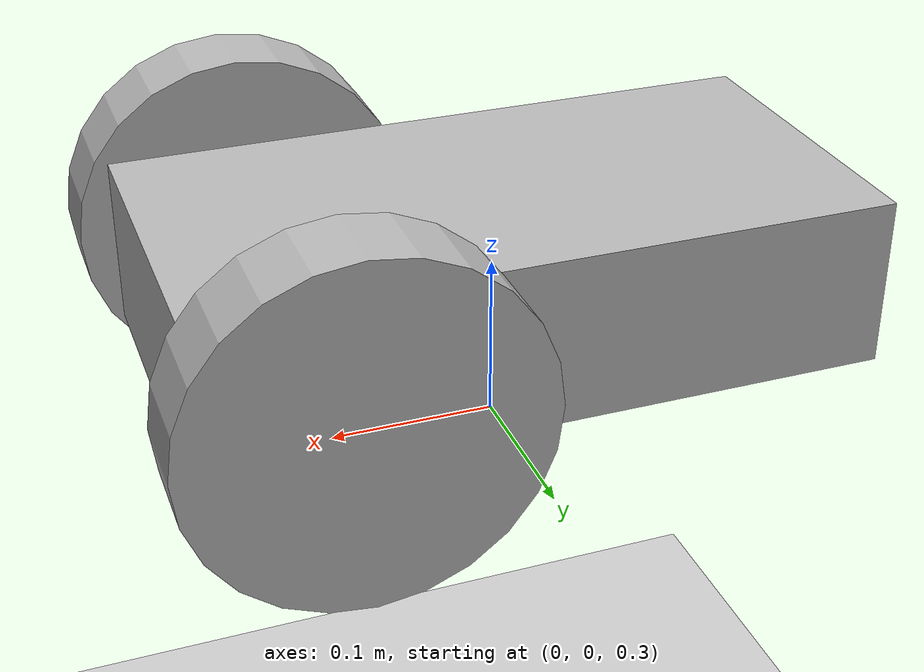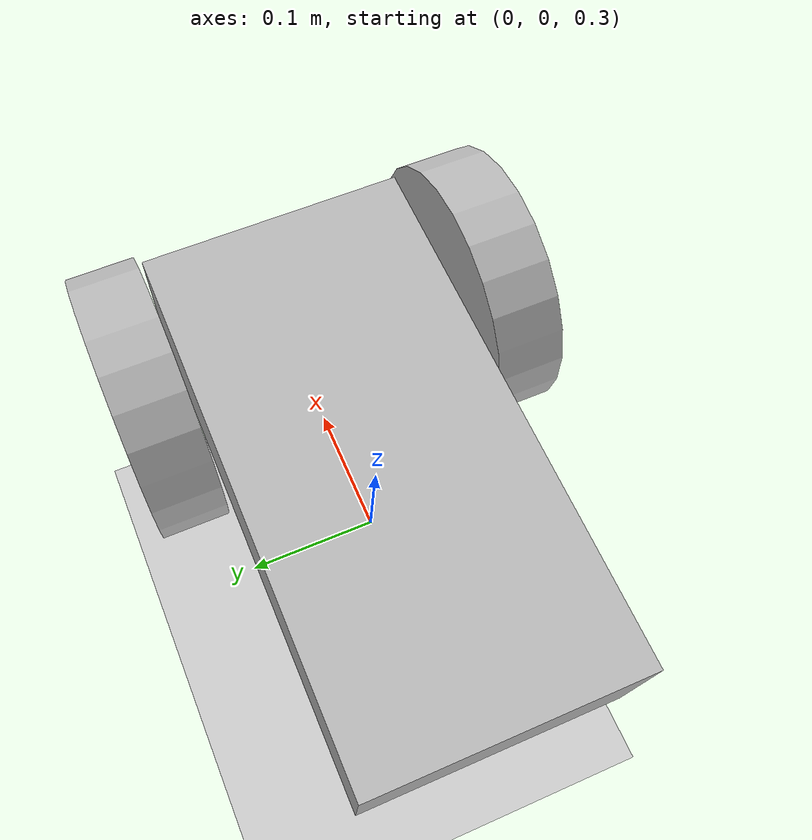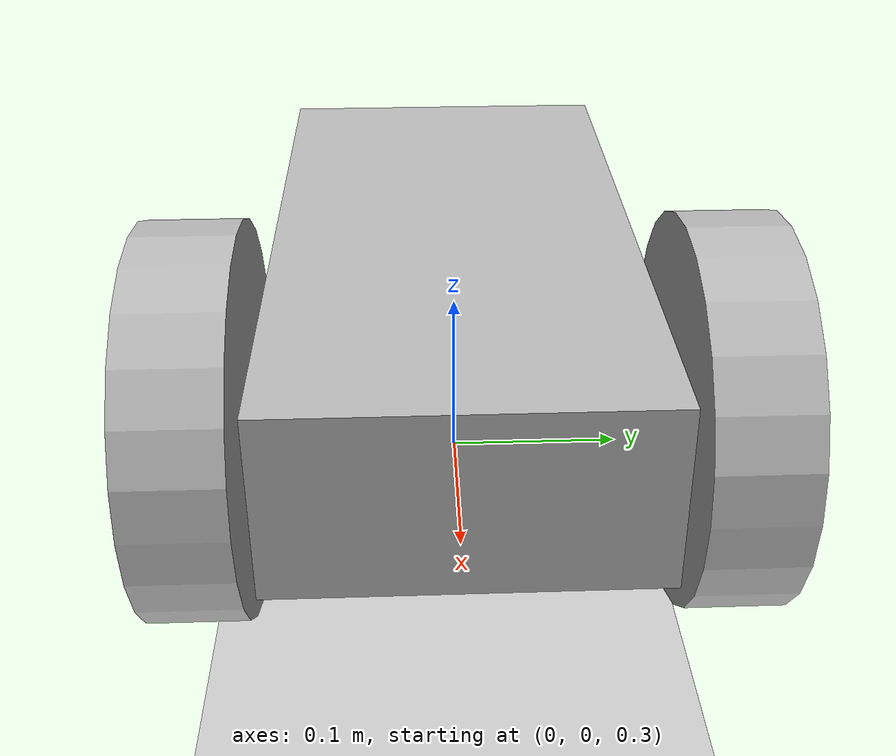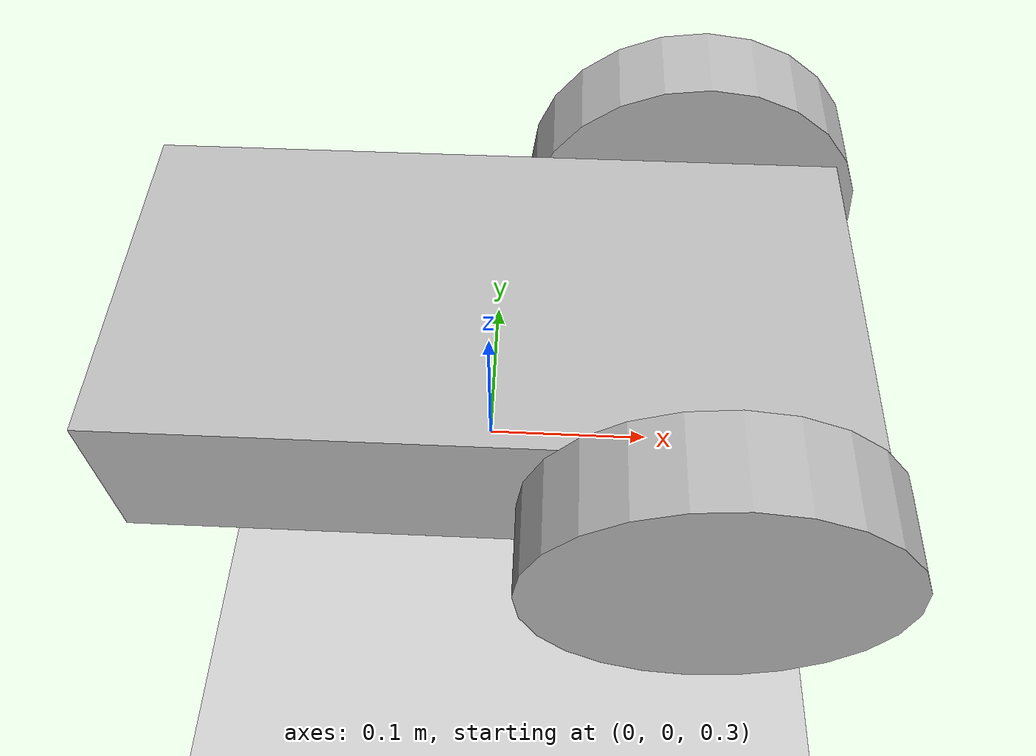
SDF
<sdf version="1.6">
  <world name="simple_world">
    <include>
      <uri>model://my_robot</uri>
      <pose>0 0 0.2 0 0 0</pose>
    </include>

    <!-- A global light source -->
    <include>
      <uri>model://sun</uri>
    </include>

    <!-- A ground plane -->
    <include>
      <uri>model://ground_plane</uri>
    </include>
  </world>
</sdf>

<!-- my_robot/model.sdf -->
<sdf version='1.4'>
  <model name="my_robot">

  	<plugin name="differential_drive_controller" filename="libgazebo_ros_diff_drive.so">

	    <!-- Plugin update rate in Hz -->
	    <updateRate>${update_rate}</updateRate>

	    <!-- Name of left joint, defaults to `left_joint` -->
	    <leftJoint>left_wheel_joint</leftJoint>

	    <!-- Name of right joint, defaults to `right_joint` -->
	    <rightJoint>right_wheel_joint</rightJoint>

	    <!-- The distance from the center of one wheel to the other, in meters, defaults to 0.34 m -->
	    <wheelSeparation>0.5380</wheelSeparation>

	    <!-- Diameter of the wheels, in meters, defaults to 0.15 m -->
	    <wheelDiameter>0.2410</wheelDiameter>

	    <!-- Wheel acceleration, in rad/s^2, defaults to 0.0 rad/s^2 -->
	    <wheelAcceleration>1.0</wheelAcceleration>

	    <!-- Maximum torque which the wheels can produce, in Nm, defaults to 5 Nm -->
	    <wheelTorque>20</wheelTorque>

	    <!-- Topic to receive geometry_msgs/Twist message commands, defaults to `cmd_vel` -->
	    <commandTopic>cmd_vel</commandTopic>

	    <!-- Topic to publish nav_msgs/Odometry messages, defaults to `odom` -->
	    <odometryTopic>odom</odometryTopic>

	    <!-- Odometry frame, defaults to `odom` -->
	    <odometryFrame>odom</odometryFrame>

	    <!-- Robot frame to calculate odometry from, defaults to `base_footprint` -->
	    <robotBaseFrame>base_footprint</robotBaseFrame>

	    <!-- Odometry source, 0 for ENCODER, 1 for WORLD, defaults to WORLD -->
	    <odometrySource>1</odometrySource>

	    <!-- Set to true to publish transforms for the wheel links, defaults to false -->
	    <publishWheelTF>true</publishWheelTF>

	    <!-- Set to true to publish transforms for the odometry, defaults to true -->
	    <publishOdom>true</publishOdom>

	    <!-- Set to true to publish sensor_msgs/JointState on /joint_states for the wheel joints, defaults to false -->
	    <publishWheelJointState>true</publishWheelJointState>

	    <!-- Set to true to swap right and left wheels, defaults to true -->
	    <legacyMode>false</legacyMode>
	  </plugin>

  	<static>false</static>
  	 <link name='chassis'>
            <pose>0 0 .2 0 0 0</pose>
            <inertial>
          	<mass>20.0</mass>
	    </inertial>

            <collision name='collision'>
              <geometry>
                <box>
                  <size>.4 .2 .1</size>
                </box>
              </geometry>
              <surface>
		    <contact>
		      <ode>
			<max_vel>0</max_vel>
		      </ode>
		    </contact>
		</surface>
            </collision>

            <visual name='visual'>
              <geometry>
                <box>
                  <size>.4 .2 .1</size>
                </box>
              </geometry>
            </visual>

            <collision name='caster_collision'>
            <pose>-0.15 0 -0.05 0 0 0</pose>
            <geometry>
                <sphere>
                <radius>.05</radius>
              </sphere>
            </geometry>

            <surface>
              <friction>
                <ode>
                  <mu>0</mu>
                  <mu2>0</mu2>
                  <slip1>1.0</slip1>
                  <slip2>1.0</slip2>
                </ode>
              </friction>
            </surface>
            <surface>
		    <contact>
		      <ode>
			<max_vel>0</max_vel>
		      </ode>
		    </contact>
		</surface>
          </collision>

          <visual name='caster_visual'>
            <pose>-0.15 0 -0.05 0 0 0</pose>
            <geometry>
              <sphere>
                <radius>.05</radius>
              </sphere>
            </geometry>
          </visual>

       </link>

	<link name="left_wheel">
	<pose>0.12 0.13 0.2 0 1.5707 1.5707</pose>
	<inertial>
		<mass>1.0</mass>
		<inertia>
		<ixx>0.043333</ixx>
		<iyy>0.043333</iyy>
		<izz>0.005333</izz>
		</inertia>
	</inertial>
	<collision name="collision">
	  <geometry>
	    <cylinder>
	      <radius>.1</radius>
	      <length>.05</length>
	    </cylinder>
	  </geometry>
	  <surface>
		    <contact>
		      <ode>
			<max_vel>0</max_vel>
		      </ode>
		    </contact>
		</surface>
	</collision>
	<visual name="visual">
	  <geometry>
	    <cylinder>
	      <radius>.1</radius>
	      <length>.05</length>
	    </cylinder>
	  </geometry>
	</visual>

	</link>

	<link name="right_wheel">
        <pose>0.12 -0.13 0.2 0 1.5707 1.5707</pose>
        <inertial>
		<mass>1.0</mass>
		<inertia>
		<ixx>0.043333</ixx>
		<iyy>0.043333</iyy>
		<izz>0.005333</izz>
		</inertia>
	</inertial>
        <collision name="collision">
          <geometry>
            <cylinder>
              <radius>.1</radius>
              <length>.05</length>
            </cylinder>
          </geometry>
          <surface>
		    <contact>
		      <ode>
			<max_vel>0</max_vel>
		      </ode>
		    </contact>
		</surface>
        </collision>
        <visual name="visual">
          <geometry>
            <cylinder>
              <radius>.1</radius>
              <length>.05</length>
            </cylinder>
          </geometry>
        </visual>
      </link>

      <joint type="revolute" name="left_wheel_joint">
        <pose>0 0 -0.03 0 0 0</pose>
        <child>left_wheel</child>
        <parent>chassis</parent>
        <axis>s
          <xyz>0 1 0</xyz>
        </axis>
      </joint>

      <joint type="revolute" name="right_wheel_joint">
        <pose>0 0 0.03 0 0 0</pose>
        <child>right_wheel</child>
        <parent>chassis</parent>
        <axis>
          <xyz>0 1 0</xyz>
        </axis>
      </joint>

  </model>
</sdf>
